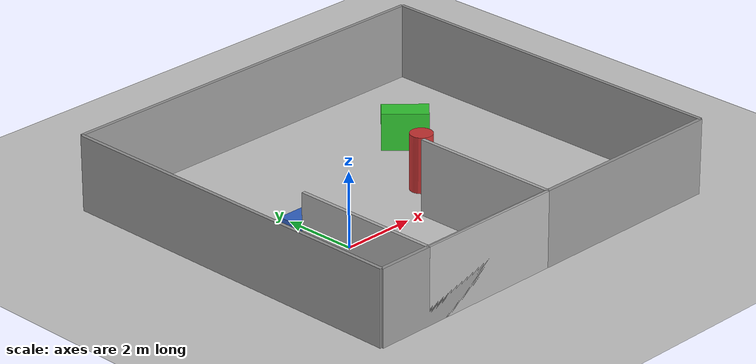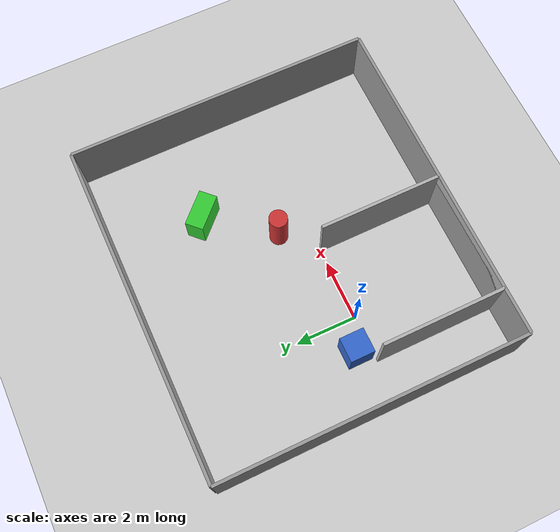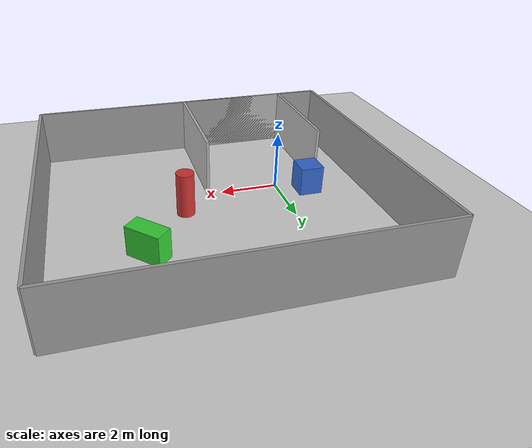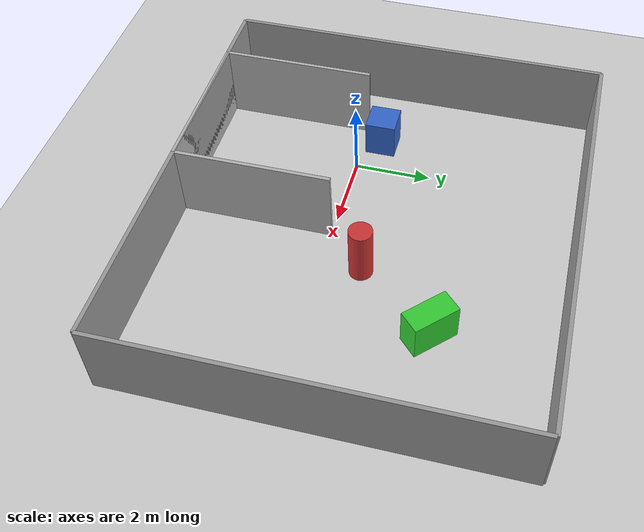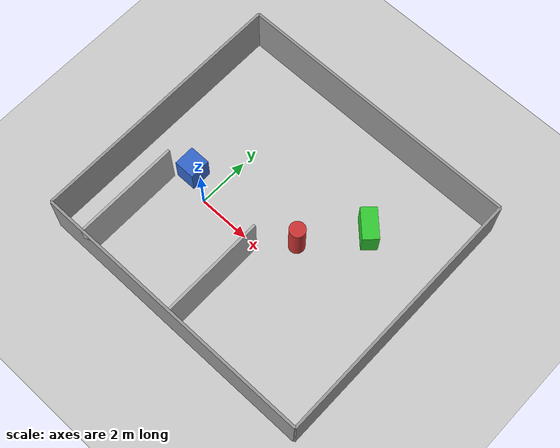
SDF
<?xml version="1.0"?>
<sdf version="1.9">
  <world name="room">
    <!-- Physics engine -->
    <physics name="default_physics" type="ode">
      <max_step_size>0.001</max_step_size>
      <real_time_factor>1.0</real_time_factor>
      <real_time_update_rate>1000</real_time_update_rate>
    </physics>

    <!-- Global settings -->
    <gravity>0 0 -9.8</gravity>
    <magnetic_field>6e-06 2.3e-05 -4.2e-05</magnetic_field>
    <atmosphere type="adiabatic"/>
    <scene>
      <ambient>0.4 0.4 0.4 1</ambient>
      <background>0.7 0.7 0.7 1</background>
      <shadows>true</shadows>
    </scene>

    <!-- Core plugins -->
    <plugin filename="gz-sim-physics-system" name="gz::sim::systems::Physics"/>
    <plugin filename="gz-sim-user-commands-system" name="gz::sim::systems::UserCommands"/>
    <plugin filename="gz-sim-scene-broadcaster-system" name="gz::sim::systems::SceneBroadcaster"/>
    <plugin filename="gz-sim-imu-system" name="gz::sim::systems::Imu"/>
    <plugin filename="gz-sim-sensors-system" name="gz::sim::systems::Sensors">
      <render_engine>ogre2</render_engine>
    </plugin>

    <!-- Lighting -->
    <light type="directional" name="sun">
      <cast_shadows>true</cast_shadows>
      <pose>0 0 10 0 0 0</pose>
      <diffuse>0.8 0.8 0.8 1</diffuse>
      <specular>0.2 0.2 0.2 1</specular>
      <attenuation>
        <range>1000</range>
        <constant>0.9</constant>
        <linear>0.01</linear>
        <quadratic>0.001</quadratic>
      </attenuation>
      <direction>-0.5 0.1 -0.9</direction>
    </light>

    <!-- Ground plane -->
    <model name="ground_plane">
      <static>true</static>
      <link name="link">
        <collision name="collision">
          <geometry>
            <plane>
              <normal>0 0 1</normal>
              <size>100 100</size>
            </plane>
          </geometry>
          <surface>
            <friction>
              <ode>
                <mu>100</mu>
                <mu2>50</mu2>
              </ode>
            </friction>
          </surface>
        </collision>
        <visual name="visual">
          <geometry>
            <plane>
              <normal>0 0 1</normal>
              <size>100 100</size>
            </plane>
          </geometry>
          <material>
            <ambient>0.8 0.8 0.8 1</ambient>
            <diffuse>0.8 0.8 0.8 1</diffuse>
            <specular>0.1 0.1 0.1 1</specular>
          </material>
        </visual>
      </link>
    </model>

    <!-- Small Room -->
    <model name="small_room_walls">
      <static>true</static>
      <pose>0.5 -2 0 0 0 0</pose>
      <!-- Wall 1: Left -->
      <link name="wall_1">
        <pose>-2 0 1 0 0 0</pose>
        <collision name="collision">
          <geometry>
            <box>
              <size>0.1 4 2</size>
            </box>
          </geometry>
        </collision>
        <visual name="visual">
          <geometry>
            <box>
              <size>0.1 4 2</size>
            </box>
          </geometry>
          <material>
            <ambient>0.7 0.7 0.7 1</ambient>
            <diffuse>0.7 0.7 0.7 1</diffuse>
          </material>
        </visual>
      </link>
      <!-- Wall 2: Right -->
      <link name="wall_2">
        <pose>2 0 1 0 0 0</pose>
        <collision name="collision">
          <geometry>
            <box>
              <size>0.1 4 2</size>
            </box>
          </geometry>
        </collision>
        <visual name="visual">
          <geometry>
            <box>
              <size>0.1 4 2</size>
            </box>
          </geometry>
          <material>
            <ambient>0.7 0.7 0.7 1</ambient>
            <diffuse>0.7 0.7 0.7 1</diffuse>
          </material>
        </visual>
      </link>
      <!-- Wall 3: Back -->
      <link name="wall_3">
        <pose>0 -2 1 0 0 0</pose>
        <collision name="collision">
          <geometry>
            <box>
              <size>4 0.1 2</size>
            </box>
          </geometry>
        </collision>
        <visual name="visual">
          <geometry>
            <box>
              <size>4 0.1 2</size>
            </box>
          </geometry>
          <material>
            <ambient>0.7 0.7 0.7 1</ambient>
            <diffuse>0.7 0.7 0.7 1</diffuse>
          </material>
        </visual>
      </link>
      <!-- Wall 4: Front (open) -->
    </model>

    <!-- Large Room -->
    <model name="large_room_walls">
      <pose>-10 0 0 0 0 0</pose>
      <static>true</static>
      <link name="large_wall_1">
        <pose>7 1 1 0 0 0</pose>
        <collision name="collision">
          <geometry>
            <box>
              <size>0.1 10 2</size>
            </box>
          </geometry>
        </collision>
        <visual name="visual">
          <geometry>
            <box>
              <size>0.1 10 2</size>
            </box>
          </geometry>
          <material>
            <ambient>0.6 0.6 0.6 1</ambient>
            <diffuse>0.6 0.6 0.6 1</diffuse>
          </material>
        </visual>
      </link>
      <link name="large_wall_2">
        <pose>18 1 1 0 0 0</pose>
        <collision name="collision">
          <geometry>
            <box>
              <size>0.1 10 2</size>
            </box>
          </geometry>
        </collision>
        <visual name="visual">
          <geometry>
            <box>
              <size>0.1 10 2</size>
            </box>
          </geometry>
          <material>
            <ambient>0.6 0.6 0.6 1</ambient>
            <diffuse>0.6 0.6 0.6 1</diffuse>
          </material>
        </visual>
      </link>
      <link name="large_wall_3">
        <pose>12.5 6 1 0 0 0</pose>
        <collision name="collision">
          <geometry>
            <box>
              <size>11 0.1 2</size>
            </box>
          </geometry>
        </collision>
        <visual name="visual">
          <geometry>
            <box>
              <size>11 0.1 2</size>
            </box>
          </geometry>
          <material>
            <ambient>0.6 0.6 0.6 1</ambient>
            <diffuse>0.6 0.6 0.6 1</diffuse>
          </material>
        </visual>
      </link>
      <link name="large_wall_4">
        <pose>12.5 -4 1 0 0 0</pose>
        <collision name="collision">
          <geometry>
            <box>
              <size>11 0.1 2</size>
            </box>
          </geometry>
        </collision>
        <visual name="visual">
          <geometry>
            <box>
              <size>11 0.1 2</size>
            </box>
          </geometry>
          <material>
            <ambient>0.6 0.6 0.6 1</ambient>
            <diffuse>0.6 0.6 0.6 1</diffuse>
          </material>
        </visual>
      </link>
    </model>

    <!-- ✅ STATIC OBSTACLES (added) -->
    <!-- Obstacle 1: Cube in small room -->
    <model name="obstacle_cube_1">
      <static>true</static>
      <pose>-1.0 0.5 0.5 0 0 0</pose>
      <link name="link">
        <collision name="collision">
          <geometry>
            <box>
              <size>0.8 0.8 1.0</size>
            </box>
          </geometry>
        </collision>
        <visual name="visual">
          <geometry>
            <box>
              <size>0.8 0.8 1.0</size>
            </box>
          </geometry>
          <material>
            <ambient>0.2 0.4 0.8 1</ambient>
            <diffuse>0.2 0.4 0.8 1</diffuse>
          </material>
        </visual>
      </link>
    </model>

    <!-- Obstacle 2: Cylinder in corridor -->
    <model name="obstacle_cylinder_1">
      <static>true</static>
      <pose>3.5 1.0 0.75 0 0 0</pose>
      <link name="link">
        <collision name="collision">
          <geometry>
            <cylinder>
              <radius>0.3</radius>
              <length>1.5</length>
            </cylinder>
          </geometry>
        </collision>
        <visual name="visual">
          <geometry>
            <cylinder>
              <radius>0.3</radius>
              <length>1.5</length>
            </cylinder>
          </geometry>
          <material>
            <ambient>0.8 0.2 0.2 1</ambient>
            <diffuse>0.8 0.2 0.2 1</diffuse>
          </material>
        </visual>
      </link>
    </model>

    <!-- Obstacle 3: Cube in large room -->
    <model name="obstacle_cube_2">
      <static>true</static>
      <pose>5 3 0.5 0 0 0.785</pose> <!-- rotated 45° -->
      <link name="link">
        <collision name="collision">
          <geometry>
            <box>
              <size>0.6 1.2 1.0</size>
            </box>
          </geometry>
        </collision>
        <visual name="visual">
          <geometry>
            <box>
              <size>0.6 1.2 1.0</size>
            </box>
          </geometry>
          <material>
            <ambient>0.2 0.8 0.2 1</ambient>
            <diffuse>0.2 0.8 0.2 1</diffuse>
          </material>
        </visual>
      </link>
    </model>

    <!-- 🔑 Keyboard-to-Twist Publishers (WASD-style) -->
    <!-- Up (↑) - 16777235 -->
    <plugin filename="gz-sim-triggered-publisher-system" name="gz::sim::systems::TriggeredPublisher">
      <input type="gz.msgs.Int32" topic="/keyboard/keypress">
        <match field="data">16777235</match>
      </input>
      <output type="gz.msgs.Twist" topic="/cmd_vel">
        linear: {x: 0.5}, angular: {z: 0.0}
      </output>
    </plugin>
    <!-- Down (↓) - 16777237 -->
    <plugin filename="gz-sim-triggered-publisher-system" name="gz::sim::systems::TriggeredPublisher">
      <input type="gz.msgs.Int32" topic="/keyboard/keypress">
        <match field="data">16777237</match>
      </input>
      <output type="gz.msgs.Twist" topic="/cmd_vel">
        linear: {x: -0.5}, angular: {z: 0.0}
      </output>
    </plugin>
    <!-- Left (←) - 16777234 -->
    <plugin filename="gz-sim-triggered-publisher-system" name="gz::sim::systems::TriggeredPublisher">
      <input type="gz.msgs.Int32" topic="/keyboard/keypress">
        <match field="data">16777234</match>
      </input>
      <output type="gz.msgs.Twist" topic="/cmd_vel">
        linear: {x: 0.0}, angular: {z: 0.5}
      </output>
    </plugin>
    <!-- Right (→) - 16777236 -->
    <plugin filename="gz-sim-triggered-publisher-system" name="gz::sim::systems::TriggeredPublisher">
      <input type="gz.msgs.Int32" topic="/keyboard/keypress">
        <match field="data">16777236</match>
      </input>
      <output type="gz.msgs.Twist" topic="/cmd_vel">
        linear: {x: 0.0}, angular: {z: -0.5}
      </output>
    </plugin>
    <!-- Stop (S) - ASCII 83 -->
    <plugin filename="gz-sim-triggered-publisher-system" name="gz::sim::systems::TriggeredPublisher">
      <input type="gz.msgs.Int32" topic="/keyboard/keypress">
        <match field="data">83</match>
      </input>
      <output type="gz.msgs.Twist" topic="/cmd_vel">
        linear: {x: 0.0}, angular: {z: 0.0}
      </output>
    </plugin>

    <!-- GUI camera -->
    <gui fullscreen="0">
      <camera name="user_camera">
        <pose>5 -8 6 0 0.6 2.2</pose>
        <view_controller>orbit</view_controller>
        <projection_type>perspective</projection_type>
      </camera>
    </gui>

  </world>
</sdf>
